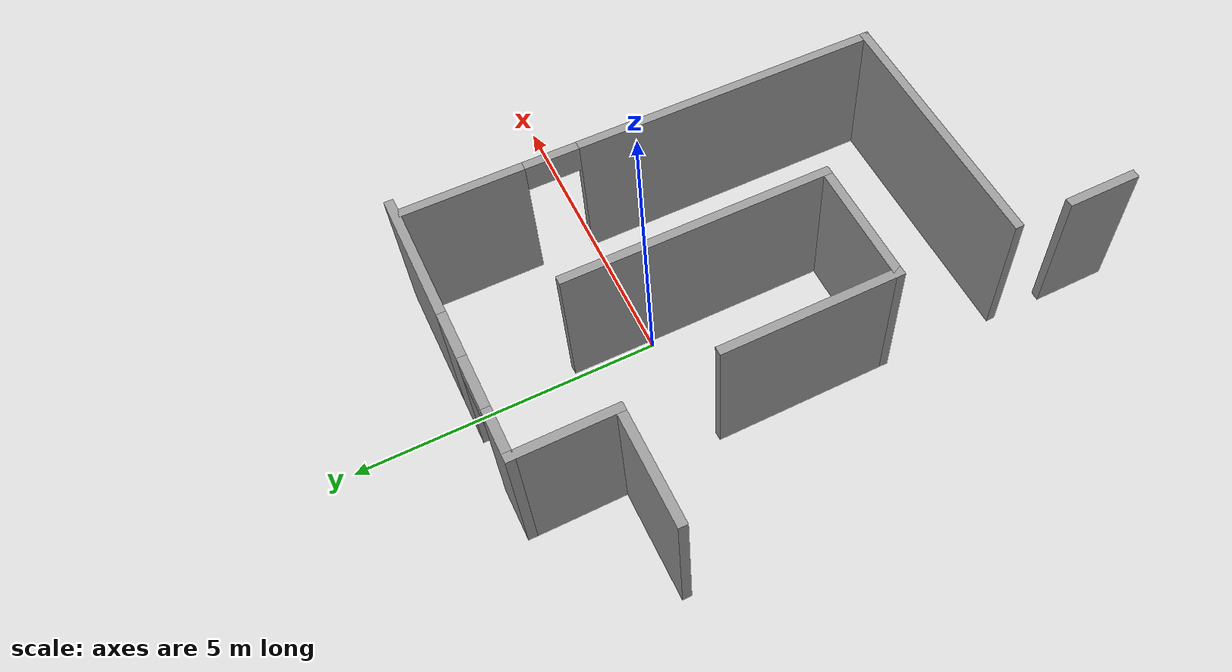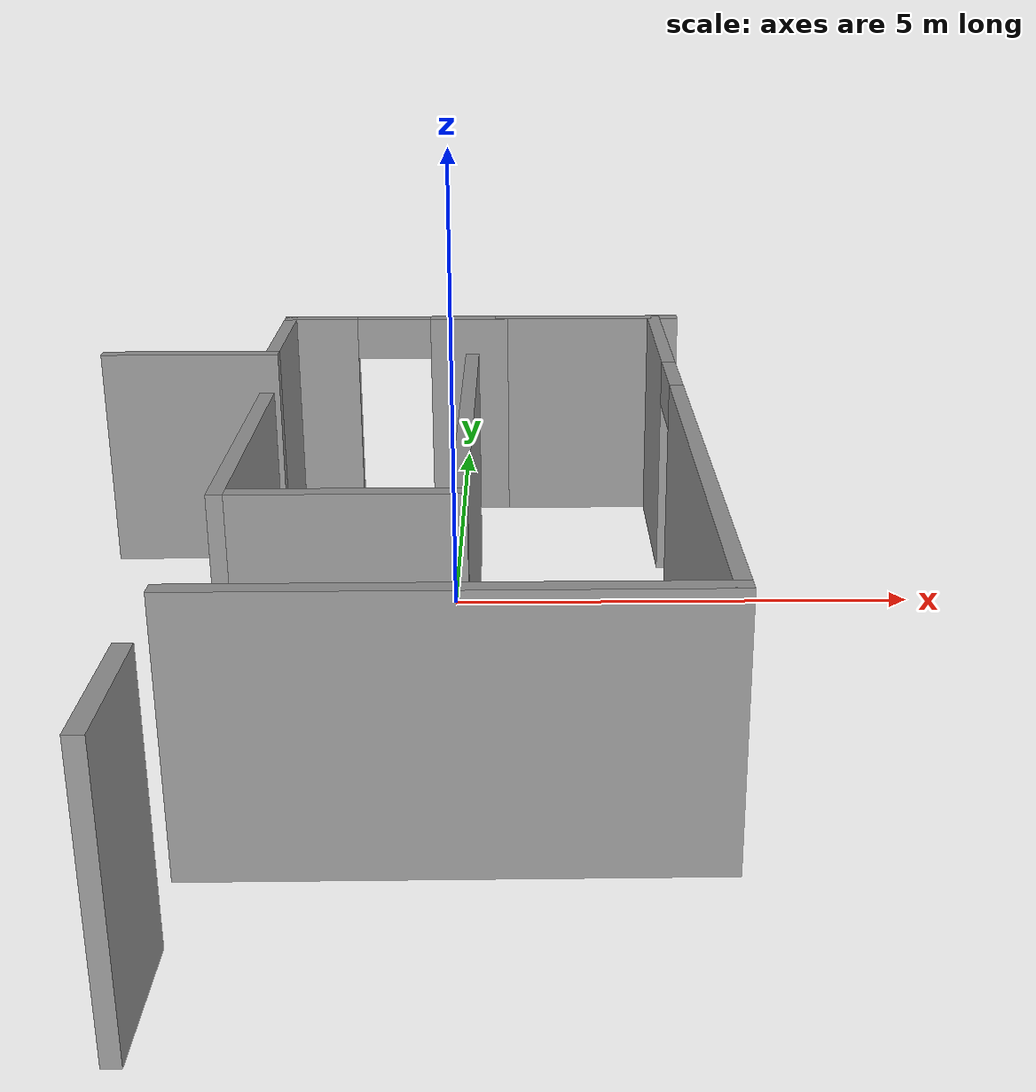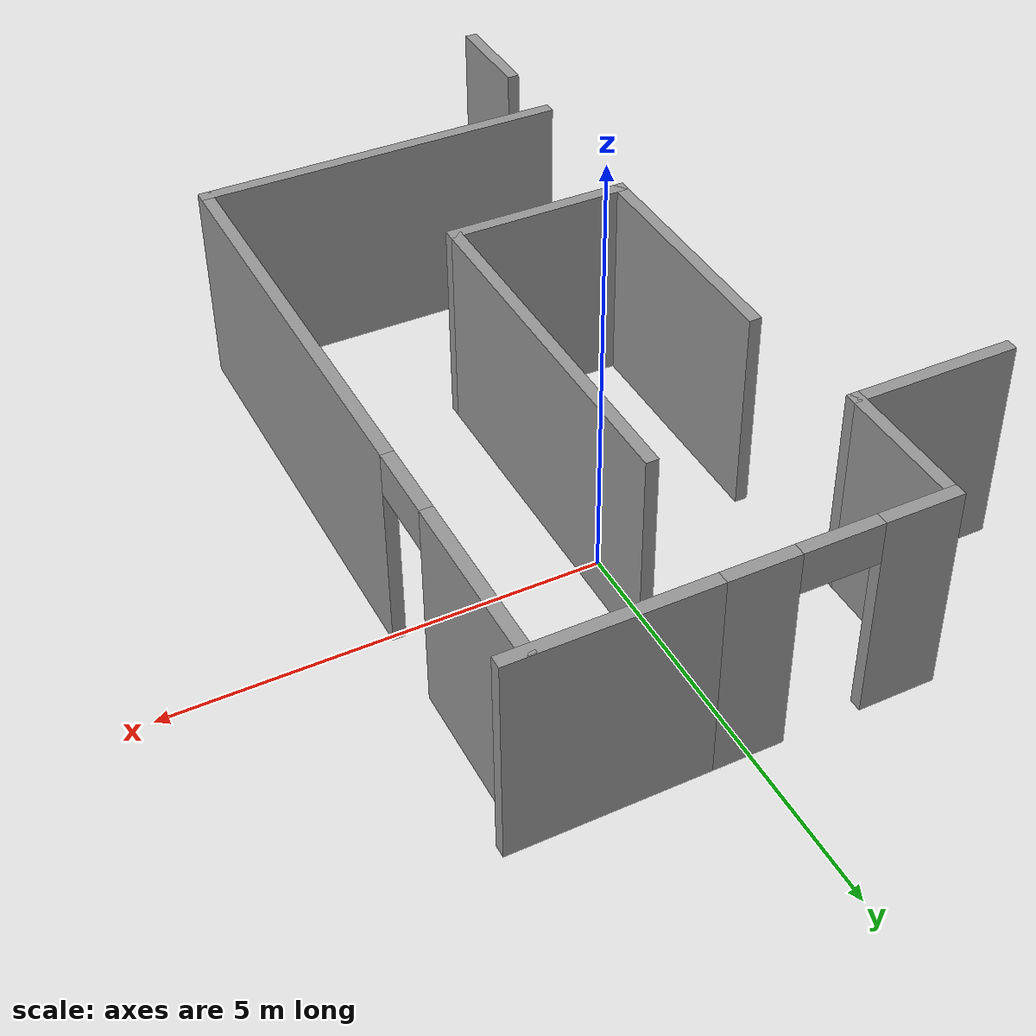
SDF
<sdf version="1.6">
 <world name="default">
  <light name="sun" type="directional">
   <pose>0 0 10 0 -0 0</pose>
   <diffuse>0.8 0.8 0.8 1</diffuse>
   <specular>0.2 0.2 0.2 1</specular>
   <attenuation>
    <range>1000</range>
    <constant>0.9</constant>
    <linear>0.01</linear>
    <quadratic>0.001</quadratic>
   </attenuation>
   <direction>-0.5 0.1 -0.9</direction>
  </light>
  <gravity>0 0 -9.8</gravity>
  <magnetic_field>6e-06 2.3e-05 -4.2e-05</magnetic_field>
  <atmosphere type="adiabatic"/>
  <physics name="default_physics" default="0" type="ode">
   <max_step_size>0.001</max_step_size>
   <real_time_factor>1</real_time_factor>
   <real_time_update_rate>1000</real_time_update_rate>
  </physics>
  <scene><ambient>0.4 0.4 0.4 1</ambient><background>0.7 0.7 0.7 1</background><shadows>1</shadows></scene>
  <audio><device>default</device></audio>
  <spherical_coordinates>
   <surface_model>EARTH_WGS84</surface_model>
   <latitude_deg>0</latitude_deg>
   <longitude_deg>0</longitude_deg>
   <elevation>0</elevation>
   <heading_deg>0</heading_deg>
  </spherical_coordinates>
  <model name="cafe">
   <pose>-0.684273 -2.10357 0 0 -0 0</pose>
   <link name="Wall_0">
    <collision name="Wall_0_Collision">
     <geometry><box><size>1.25 0.15 2.5</size></box></geometry>
     <pose>0 0 1.25 0 -0 0</pose>
    </collision>
    <visual name="Wall_0_Visual">
     <pose>0 0 1.25 0 -0 0</pose>
     <geometry><box><size>1.25 0.15 2.5</size></box></geometry>
     <material>
      <script><uri>file://media/materials/scripts/gazebo.material</uri><name>Gazebo/Grey</name></script>
      <ambient>1 1 1 1</ambient>
     </material>
     <meta><layer>0</layer></meta>
    </visual>
    <pose>-1.32573 -4.54643 0 0 -0 -1.5708</pose>
   </link>
   <link name="Wall_11">
    <collision name="Wall_11_Collision">
     <geometry><box><size>4.5 0.15 2.5</size></box></geometry>
     <pose>0 0 1.25 0 -0 0</pose>
    </collision>
    <visual name="Wall_11_Visual">
     <pose>0 0 1.25 0 -0 0</pose>
     <geometry><box><size>4.5 0.15 2.5</size></box></geometry>
     <material>
      <script><uri>file://media/materials/scripts/gazebo.material</uri><name>Gazebo/Grey</name></script>
      <ambient>1 1 1 1</ambient>
     </material>
     <meta><layer>0</layer></meta>
    </visual>
    <pose>0.860179 1.17243 0 0 -0 -1.5708</pose>
   </link>
   <link name="Wall_12">
    <collision name="Wall_12_Collision">
     <geometry><box><size>2.25 0.15 2.5</size></box></geometry>
     <pose>0 0 1.25 0 -0 0</pose>
    </collision>
    <visual name="Wall_12_Visual">
     <pose>0 0 1.25 0 -0 0</pose>
     <geometry><box><size>2.25 0.15 2.5</size></box></geometry>
     <material>
      <script><uri>file://media/materials/scripts/gazebo.material</uri><name>Gazebo/Grey</name></script>
      <ambient>1 1 1 1</ambient>
     </material>
     <meta><layer>0</layer></meta>
    </visual>
    <pose>-0.189821 -1.00257 0 0 -0 3.14159</pose>
   </link>
   <link name="Wall_13">
    <collision name="Wall_13_Collision">
     <geometry><box><size>3 0.15 2.5</size></box></geometry>
     <pose>0 0 1.25 0 -0 0</pose>
    </collision>
    <visual name="Wall_13_Visual">
     <pose>0 0 1.25 0 -0 0</pose>
     <geometry><box><size>3 0.15 2.5</size></box></geometry>
     <material>
      <script><uri>file://media/materials/scripts/gazebo.material</uri><name>Gazebo/Grey</name></script>
      <ambient>1 1 1 1</ambient>
     </material>
     <meta><layer>0</layer></meta>
    </visual>
    <pose>-1.23982 0.422428 0 0 -0 1.5708</pose>
   </link>
   <link name="Wall_2">
    <collision name="Wall_2_Collision">
     <geometry><box><size>4.5 0.15 2.5</size></box></geometry>
     <pose>0 0 1.25 0 -0 0</pose>
    </collision>
    <visual name="Wall_2_Visual">
     <pose>0 0 1.25 0 -0 0</pose>
     <geometry><box><size>4.5 0.15 2.5</size></box></geometry>
     <material>
      <script><uri>file://media/materials/scripts/gazebo.material</uri><name>Gazebo/Grey</name></script>
      <ambient>1 1 1 1</ambient>
     </material>
     <meta><layer>0</layer></meta>
    </visual>
    <pose>0.879273 -3.01643 0 0 -0 0</pose>
   </link>
   <link name="Wall_3">
    <pose>3.05427 1.03357 0 0 -0 1.5708</pose>
    <visual name="Wall_3_Visual_0">
     <pose>-1.50547 0 1.25 0 -0 0</pose>
     <geometry><box><size>5.23905 0.15 2.5</size></box></geometry>
     <material>
      <script><uri>file://media/materials/scripts/gazebo.material</uri><name>Gazebo/Grey</name></script>
      <ambient>1 1 1 1</ambient>
     </material>
     <meta><layer>0</layer></meta>
    </visual>
    <collision name="Wall_3_Collision_0">
     <geometry><box><size>5.23905 0.15 2.5</size></box></geometry>
     <pose>-1.50547 0 1.25 0 -0 0</pose>
    </collision>
    <visual name="Wall_3_Visual_1">
     <pose>3.06953 0 1.25 0 -0 0</pose>
     <geometry><box><size>2.11095 0.15 2.5</size></box></geometry>
     <material>
      <script><uri>file://media/materials/scripts/gazebo.material</uri><name>Gazebo/Grey</name></script>
      <ambient>1 1 1 1</ambient>
     </material>
     <meta><layer>0</layer></meta>
    </visual>
    <collision name="Wall_3_Collision_1">
     <geometry><box><size>2.11095 0.15 2.5</size></box></geometry>
     <pose>3.06953 0 1.25 0 -0 0</pose>
    </collision>
    <visual name="Wall_3_Visual_2">
     <pose>1.56405 0 2.25 0 -0 0</pose>
     <geometry><box><size>0.9 0.15 0.5</size></box></geometry>
     <material>
      <script><uri>file://media/materials/scripts/gazebo.material</uri><name>Gazebo/Grey</name></script>
      <ambient>1 1 1 1</ambient>
     </material>
     <meta><layer>0</layer></meta>
    </visual>
    <collision name="Wall_3_Collision_2">
     <geometry><box><size>0.9 0.15 0.5</size></box></geometry>
     <pose>1.56405 0 2.25 0 -0 0</pose>
    </collision>
   </link>
   <link name="Wall_5">
    <collision name="Wall_5_Collision">
     <geometry><box><size>2.25 0.15 2.5</size></box></geometry>
     <pose>0 0 1.25 0 -0 0</pose>
    </collision>
    <visual name="Wall_5_Visual">
     <pose>0 0 1.25 0 -0 0</pose>
     <geometry><box><size>2.25 0.15 2.5</size></box></geometry>
     <material>
      <script><uri>file://media/materials/scripts/gazebo.material</uri><name>Gazebo/Grey</name></script>
      <ambient>1 1 1 1</ambient>
     </material>
     <meta><layer>0</layer></meta>
    </visual>
    <pose>2.225 5.09643 0 0 -0 0</pose>
   </link>
   <link name="Wall_7">
    <pose>-0.125 5.09643 0 0 -0 3.14159</pose>
    <visual name="Wall_7_Visual_0">
     <pose>-0.897878 0 1.25 0 -0 0</pose>
     <geometry><box><size>0.954245 0.15 2.5</size></box></geometry>
     <material>
      <script><uri>file://media/materials/scripts/gazebo.material</uri><name>Gazebo/Grey</name></script>
      <ambient>1 1 1 1</ambient>
     </material>
     <meta><layer>0</layer></meta>
    </visual>
    <collision name="Wall_7_Collision_0">
     <geometry><box><size>0.954245 0.15 2.5</size></box></geometry>
     <pose>-0.897878 0 1.25 0 -0 0</pose>
    </collision>
    <visual name="Wall_7_Visual_1">
     <pose>0.927122 0 1.25 0 -0 0</pose>
     <geometry><box><size>0.895755 0.15 2.5</size></box></geometry>
     <material>
      <script><uri>file://media/materials/scripts/gazebo.material</uri><name>Gazebo/Grey</name></script>
      <ambient>1 1 1 1</ambient>
     </material>
     <meta><layer>0</layer></meta>
    </visual>
    <collision name="Wall_7_Collision_1">
     <geometry><box><size>0.895755 0.15 2.5</size></box></geometry>
     <pose>0.927122 0 1.25 0 -0 0</pose>
    </collision>
    <visual name="Wall_7_Visual_2">
     <pose>0.029245 0 2.25 0 -0 0</pose>
     <geometry><box><size>0.9 0.15 0.5</size></box></geometry>
     <material>
      <script><uri>file://media/materials/scripts/gazebo.material</uri><name>Gazebo/Grey</name></script>
      <ambient>1 1 1 1</ambient>
     </material>
     <meta><layer>0</layer></meta>
    </visual>
    <collision name="Wall_7_Collision_2">
     <geometry><box><size>0.9 0.15 0.5</size></box></geometry>
     <pose>0.029245 0 2.25 0 -0 0</pose>
    </collision>
   </link>
   <link name="Wall_8">
    <collision name="Wall_8_Collision">
     <geometry><box><size>1.75 0.15 2.5</size></box></geometry>
     <pose>0 0 1.25 0 -0 0</pose>
    </collision>
    <visual name="Wall_8_Visual">
     <pose>0 0 1.25 0 -0 0</pose>
     <geometry><box><size>1.75 0.15 2.5</size></box></geometry>
     <material>
      <script><uri>file://media/materials/scripts/gazebo.material</uri><name>Gazebo/Grey</name></script>
      <ambient>1 1 1 1</ambient>
     </material>
     <meta><layer>0</layer></meta>
    </visual>
    <pose>-1.425 4.29643 0 0 -0 -1.5708</pose>
   </link>
   <link name="Wall_9">
    <collision name="Wall_9_Collision">
     <geometry><box><size>2 0.15 2.5</size></box></geometry>
     <pose>0 0 1.25 0 -0 0</pose>
    </collision>
    <visual name="Wall_9_Visual">
     <pose>0 0 1.25 0 -0 0</pose>
     <geometry><box><size>2 0.15 2.5</size></box></geometry>
     <material>
      <script><uri>file://media/materials/scripts/gazebo.material</uri><name>Gazebo/Grey</name></script>
      <ambient>1 1 1 1</ambient>
     </material>
     <meta><layer>0</layer></meta>
    </visual>
    <pose>-2.35 3.49643 0 0 -0 3.14159</pose>
   </link>
   <static>1</static>
  </model>
 </world>
</sdf>
